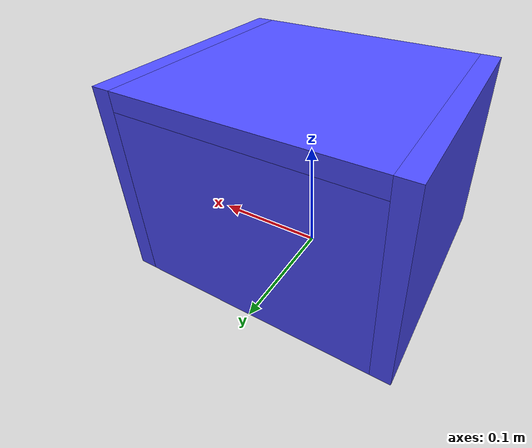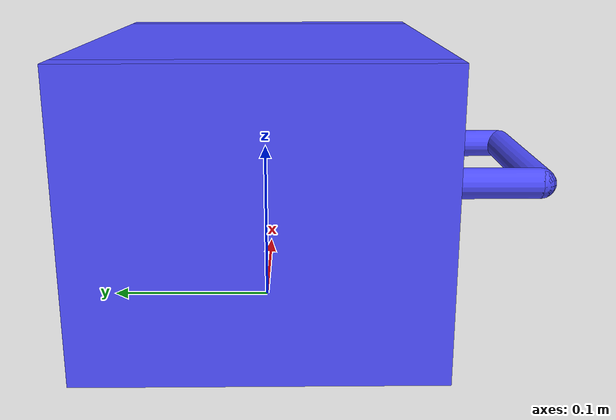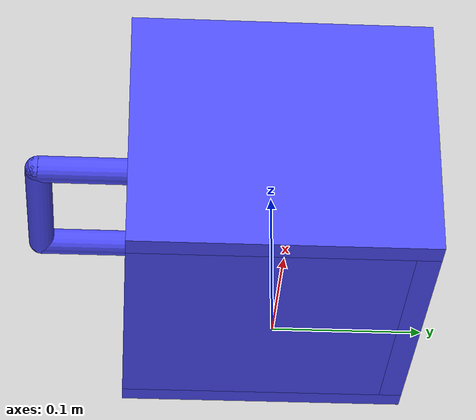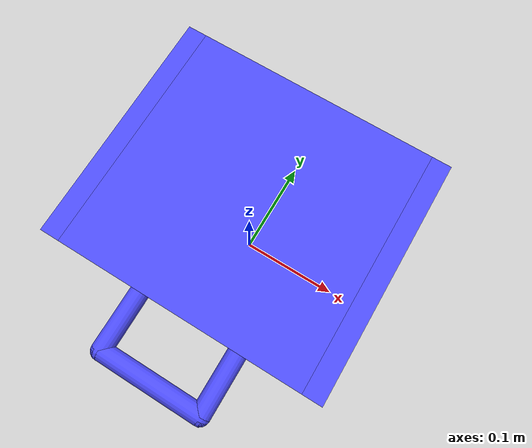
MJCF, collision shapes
<mujoco model="drawer">
   <compiler angle="radian" inertiafromgeom="auto" inertiagrouprange="4 5"/>
    <asset>

      <material name="drawer_col" rgba="0.3 0.3 1.0 0.5" shininess="0" specular="0"/>
      <material name="drawer_red" rgba="0.19 0.38 0.2 1" shininess="1" reflectance=".7" specular=".5"/>
      <material name="drawer_white" rgba=".75 .75 .75 1" shininess="1" reflectance=".7" specular=".5"/>
      <material name="drawer_beige" rgba=".4 .65 .4 1" shininess="1" reflectance="1" specular=".5"/>

    </asset>
    <default>

      <default class="drawer_base">
          <joint armature="0.001" damping="2" limited="true"/>
          <geom conaffinity="0" contype="0" group="1" type="mesh"/>
          <position ctrllimited="true" ctrlrange="0 1.57"/>
          <default class="drawer_viz">
              <geom condim="4" type="mesh"/>
          </default>
          <default class="drawer_col">
              <geom conaffinity="1" condim="3" contype="1" group="4" material="drawer_col" solimp="0.99 0.99 0.01" solref="0.01 1"/>
          </default>
      </default>
    </default>

    <asset>
        <mesh file="meshes/drawer/drawer.stl" name="drawer"/>
        <mesh file="package://meshes/drawer/drawercase.stl" name="drawercase"/>
        <mesh file="package://meshes/drawer/drawerhandle.stl" name="drawerhandle"/>
    </asset>
    <worldbody>
        <body childclass="drawer_base">
        <body name="drawercase_link" pos="0 0 0.084">
            <geom material="drawer_beige" mesh="drawercase"/>
            <geom class="drawer_col" pos="-0.11 0 0" size="0.008 0.1 0.084" type="box" mass=".05"/>
            <geom class="drawer_col" pos="0.11 0 0" size="0.008 0.1 0.084" type="box" mass=".05"/>
            <geom class="drawer_col" pos="0 0.092 -0.008" size="0.102 0.008 0.076" type="box" mass=".05"/>
            <geom class="drawer_col" pos="0 -0.008 -0.07" size="0.102 0.092 0.014" type="box" mass=".05"/>
            <geom class="drawer_col" pos="0 0 0.076" size="0.102 0.1 0.008" type="box" mass=".05"/>
            <body name="drawer_link" pos="0 -0.01 0.006">
                <joint type="slide" range="-0.16 0" axis="0 1 0" name="goal_slidey" pos="0 0 0" damping="2"/>
                <geom material="drawer_beige" mesh="drawer"/>
                <geom material="drawer_white" mesh="drawerhandle" pos="0 -0.114 0" name="objGeom"/>
                <geom class="drawer_col" pos="0 -0.082 0.008" size="0.1 0.008 0.052" type="box" mass=".04"/>
                <geom class="drawer_col" pos="0 0.082 0.008" size="0.1 0.008 0.052" type="box" mass=".04"/>
                <geom class="drawer_col" pos="-0.092 0 0.008" size="0.008 0.074 0.052" type="box" mass=".04"/>
                <geom class="drawer_col" pos="0.092 0 0.008" size="0.008 0.074 0.052" type="box" mass=".04"/>
                <geom class="drawer_col" pos="0 0 -0.052" size="0.1 0.09 0.008" type="box" mass=".04"/>
                <geom class="drawer_col" euler="1.571 0 0" pos="-0.05 -0.12 0.0" size="0.009 0.03" type="capsule" mass=".06"/>
                <geom class="drawer_col" euler="0 1.57 0" pos="0 -0.15 0" size="0.009 0.05" type="capsule" mass=".06"/>
                <geom class="drawer_col" euler="1.57 0 0" pos="0.05 -0.12 0" size="0.009 0.03" type="capsule" mass=".06"/>
            </body>
        </body>
    </body>
    </worldbody>
</mujoco>
